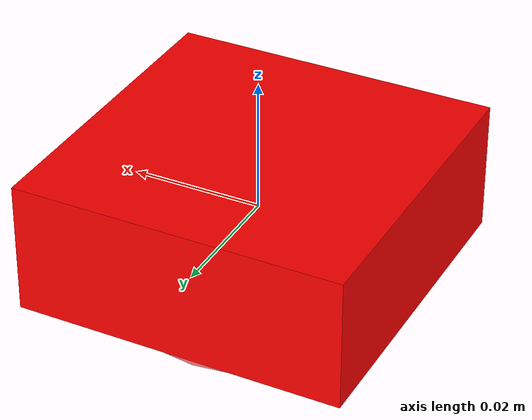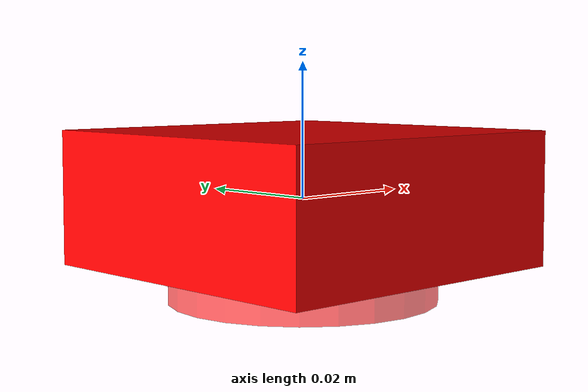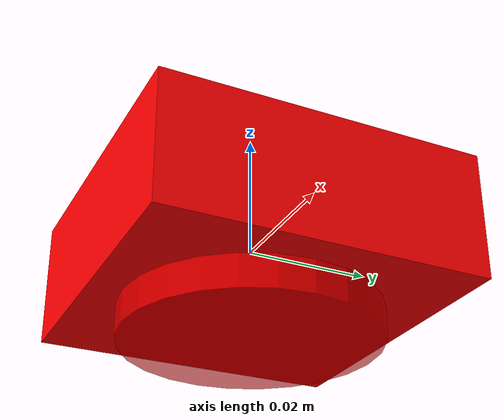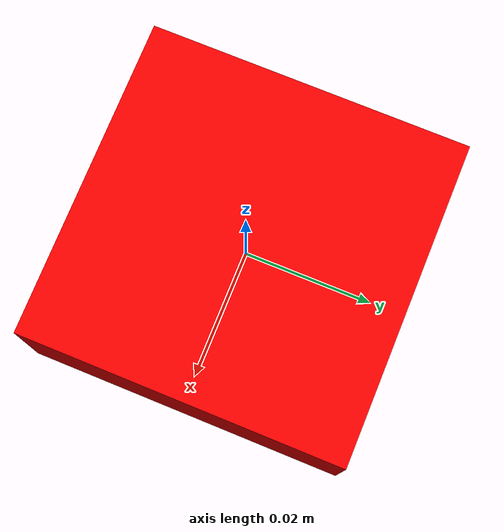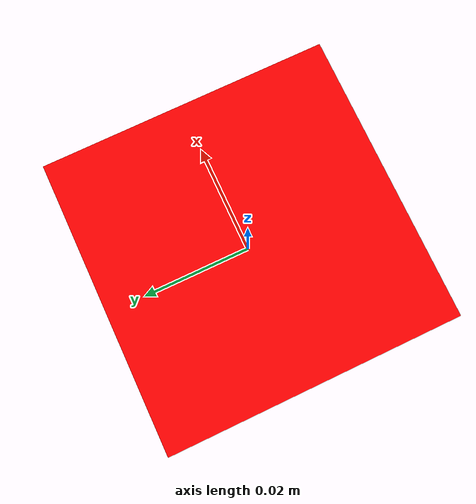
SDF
<?xml version="1.0" ?>
<sdf version="1.4">
  <model name="small_light">
    <link name="light_link">
      <inertial>
        <pose>0.01 0.025 0.025 0 0 0</pose>
        <mass>0.005</mass>
        <inertia>
          <ixx>4.15e-6</ixx>
          <ixy>0</ixy>
          <ixz>0</ixz>
          <iyy>2.407e-6</iyy>
          <iyz>0</iyz>
          <izz>2.407e-6</izz>
        </inertia>
      </inertial>
      <visual name="visual">
        <geometry>
          <box>
            <size>0.05 0.05 0.02</size>
          </box>
        </geometry>
          <material>
            <diffuse>1 0 0 1</diffuse>
            <specular>1 0 0 1</specular>
            <emissive>1 0 0 1</emissive>
          </material>
      </visual>
    </link>
    <link name='light_source'>
        <pose>0 0 -0.01 0 0 0</pose>
        <light name='lamp' type='spot'>
          <pose>0 0 0.0 0 0 0</pose>
          <attenuation>
            <range>30</range>
            <linear>0.05</linear>
          </attenuation>
          <diffuse>0.5 1 1 1</diffuse>
          <specular>1 1 1 1</specular>
          <spot>
            <inner_angle>0.3</inner_angle>
            <outer_angle>0.35</outer_angle>
            <falloff>1</falloff>
          </spot>
          <direction>0 0 -1</direction>
        </light>
      <inertial>
        <pose>0.01 0.025 0.025 0 0 0</pose>
        <mass>0.005</mass>
        <inertia>
          <ixx>4.15e-6</ixx>
          <ixy>0</ixy>
          <ixz>0</ixz>
          <iyy>2.407e-6</iyy>
          <iyz>0</iyz>
          <izz>2.407e-6</izz>
        </inertia>
      </inertial>
        <visual name='lamp'>
          <geometry>
            <cylinder>
              <radius>0.02</radius>
              <length>0.01</length>
            </cylinder>
          </geometry>
          <transparency>0.4</transparency>
          <material>
            <ambient>0.5 1 1 1</ambient>
            <diffuse>1 0 0 1</diffuse>
            <specular>1 1 1 1</specular>
            <emissive>0.5 1 1 1</emissive>
          </material>
        </visual>
    </link>

    <joint name='joint_source' type='fixed'>
        <parent>light_link</parent>
        <child>light_source</child>
    </joint>
      <plugin name='light_control' filename='libLedPlugin.so'>
        <enable>true</enable>
        <light>
          <id>light_source/lamp</id>
          <duration>0.3</duration>
          <interval>0.4</interval>
          <enable>true</enable>
        </light>
      </plugin>
  </model>
</sdf>
